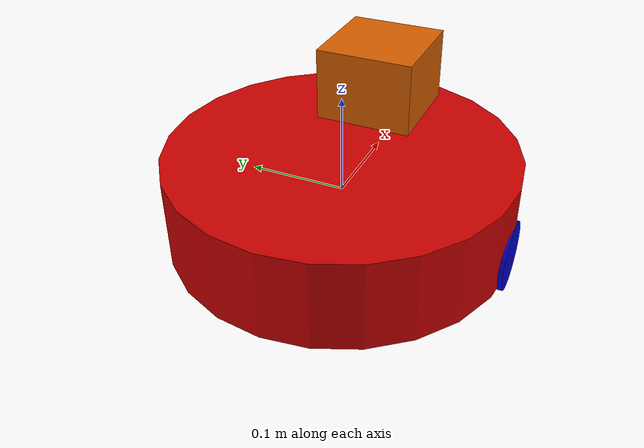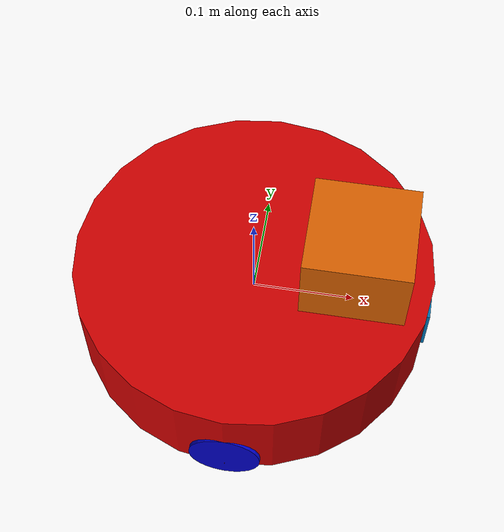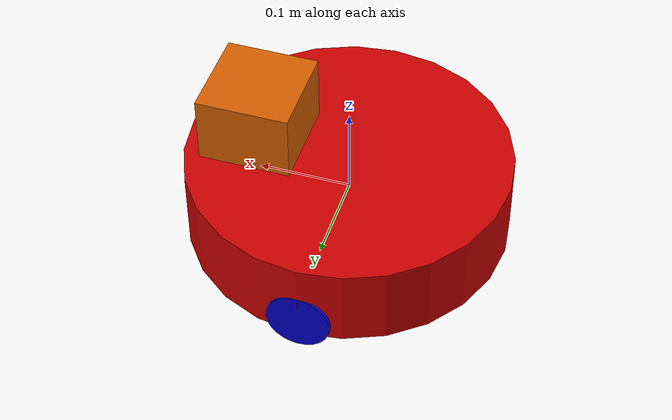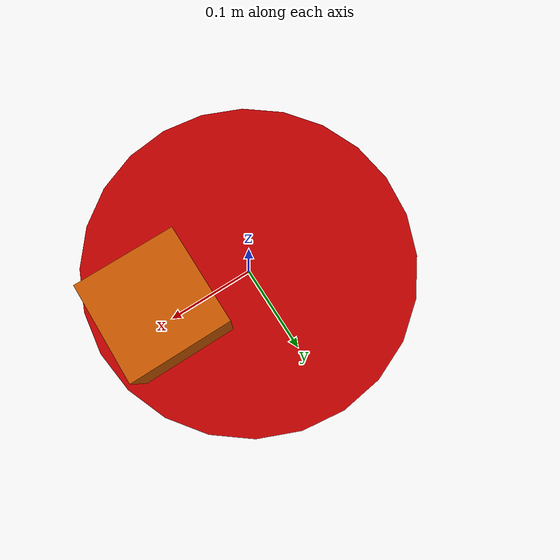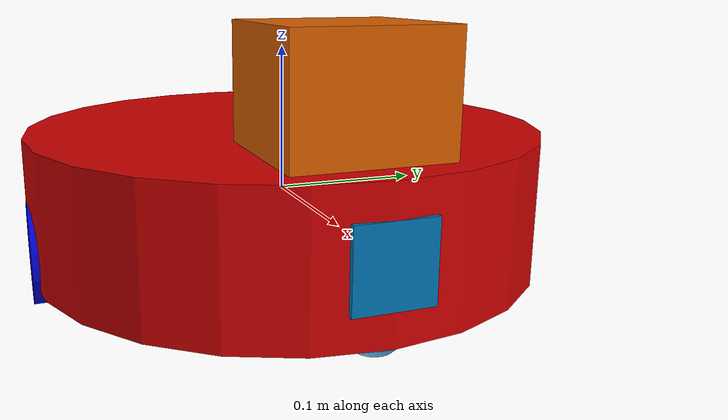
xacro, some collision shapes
<?xml version='1.0'?>

<robot name="my_robot" xmlns:xacro="http://www.ros.org/wiki/xacro">

  <xacro:include filename="$(find my_robot)/urdf/my_robot.gazebo" />

  <material name="blue">
    <color rgba="0 0 0.8 1"/>
  </material>

  <material name="red">
    <color rgba="0.8 0 0 1"/>
  </material>

  <link name="robot_footprint"></link>

  <joint name="robot_footprint_joint" type="fixed">
    <origin xyz="0 0 0" rpy="0 0 0" />
    <parent link="robot_footprint"/>
    <child link="chassis" />
  </joint>

  <joint type="continuous" name="left_wheel_hinge">
    <origin xyz="0 0.15 -0.029" rpy="0 0 0"/>
    <child link="left_wheel"/>
    <parent link="chassis"/>
    <axis xyz="0 1 0" rpy="0 0 0"/>
    <limit effort="10000" velocity="1000"/>
    <dynamics damping="1.0" friction="1.0"/>
  </joint>

  <joint type="continuous" name="right_wheel_hinge">
    <origin xyz="0 -0.15 -0.029" rpy="0 0 0"/>
    <child link="right_wheel"/>
    <parent link="chassis"/>
    <axis xyz="0 1 0" rpy="0 0 0"/>
    <limit effort="10000" velocity="1000"/>
    <dynamics damping="1.0" friction="1.0"/>
  </joint>

  <joint name="camera_joint" type="fixed">
    <origin xyz="0.15 0 0" rpy="0 0 0" />
    <parent link="chassis"/>
    <axis xyz="0 1 0" rpy="0 0 0"/>
    <child link="camera" />
  </joint>

  <joint name="hokuyo_joint" type="fixed">
    <origin xyz="0.10 0 0.071" rpy="0 0 0" />
    <parent link="chassis"/>
    <axis xyz="0 1 0" rpy="0 0 0"/>
    <child link="hokuyo" />
  </joint>

  <link name='chassis'>
    <pose>0 0 0.08 0 0 0</pose>

    <inertial>
      <mass value="3.5"/>
      <origin xyz="0.0 0 0" rpy=" 0 0 0"/>
      <inertia
          ixx="0.05" ixy="0" ixz="0"
          iyy="0.05" iyz="0"
          izz="0.05"
      />
    </inertial>

    <collision name='chassis_collision'>
      <origin xyz="0 0 0" rpy=" 0 0 0"/>
      <geometry>
        <cylinder radius="0.175" length="0.092"/>
      </geometry>
    </collision>

    <visual name='chassis_visual'>
      <origin xyz="0 0 0" rpy=" 0 0 0"/>
      <geometry>
        <cylinder radius="0.175" length="0.092"/>
      </geometry>
      <material name="red"/>
    </visual>

    <collision name='back_caster_1_collision'>
      <origin xyz="-0.13 -0.05 -0.046" rpy=" 0 0 0"/>
      <geometry>
        <sphere radius="0.0169"/>
      </geometry>
    </collision>

    <visual name='back_caster_1_visual'>
      <origin xyz="-0.13 -0.05 -0.04" rpy=" 0 0 0"/>
      <geometry>
        <sphere radius="0.02"/>
      </geometry>
    </visual>

    <collision name='back_caster_2_collision'>
      <origin xyz="-0.13 0.05 -0.046" rpy=" 0 0 0"/>
      <geometry>
        <sphere radius="0.0169"/>
      </geometry>
    </collision>

    <visual name='back_caster_2_visual'>
      <origin xyz="-0.13 0.05 -0.04" rpy=" 0 0 0"/>
      <geometry>
        <sphere radius="0.02"/>
      </geometry>
    </visual>

    <collision name='front_caster_collision'>
      <origin xyz="0.15 0 -0.046" rpy=" 0 0 0"/>
      <geometry>
        <sphere radius="0.0169"/>
      </geometry>
    </collision>

    <visual name='front_caster_visual'>
      <origin xyz="0.15 0 -0.04" rpy=" 0 0 0"/>
      <geometry>
        <sphere radius="0.02"/>
      </geometry>
    </visual>

  </link>

  <link name='left_wheel'>
    <pose>0 0 0 0 1.57070 1.5707</pose>

    <inertial>
      <mass value="0.25"/>
      <origin xyz="0.0 0 0" rpy=" 0 0 0"/>
        <inertia
          ixx="0.01" ixy="0" ixz="0"
          iyy="0.01" iyz="0"
          izz="0.01"
        />
    </inertial>

    <collision name='left_wheel_collision'>
      <origin xyz="0 0 0" rpy=" 0 1.57 1.57"/>
      <geometry>
        <cylinder radius="0.034" length="0.05"/>
      </geometry>
    </collision>

    <visual name='left_wheel_visual'>
      <origin xyz="0 0 0" rpy=" 0 1.57 1.57"/>
      <geometry>
        <cylinder radius="0.034" length="0.05"/>
      </geometry>
      <material name="blue"/>
    </visual>

  </link>

  <link name='right_wheel'>
    <pose>0 0 0 0 1.5707 1.5707</pose>

    <inertial>
      <mass value="0.25"/>
      <origin xyz="0.0 0 0" rpy=" 0 0 0"/>
        <inertia
          ixx="0.01" ixy="0" ixz="0"
          iyy="0.01" iyz="0"
          izz="0.01"
      />
    </inertial>

    <collision name='right_wheel_collision'>
      <origin xyz="0 0 0" rpy=" 0 1.57 1.57"/>
      <geometry>
        <cylinder radius="0.034" length="0.05"/>
      </geometry>
    </collision>

    <visual name='right_wheel_visual'>
      <origin xyz="0 0 0" rpy=" 0 1.57 1.57"/>
      <geometry>
        <cylinder radius="0.034" length="0.05"/>
      </geometry>
      <material name="blue"/>
    </visual>

  </link>

  <link name="camera">
    <inertial>
      <mass value="0.1"/>
      <origin xyz="0 0 0" rpy="0 0 0"/>
			<inertia ixx="0.000001" ixy="0" ixz="0"
							 iyy="0.000001" iyz="0"
							 izz="0.000001"
			/>
    </inertial>

		<collision name='collision_camera'>
      <origin xyz="0 0 0" rpy=" 0 0 0"/>
      <geometry>
        <box size=".05 .05 .05"/>
      </geometry>
    </collision>

    <visual name='visual_camera'>
      <origin xyz="0 0 0" rpy=" 0 0 0"/>
      <geometry>
        <box size=".05 .05 .05"/>
      </geometry>
    </visual>

  </link>

  <link name="hokuyo">
    <inertial>
      <mass value="0.00001"/>
      <origin xyz="0 0 0" rpy="0 0 0"/>
			<inertia ixx="0.000001" ixy="0" ixz="0"
							 iyy="0.000001" iyz="0"
							 izz="0.000001"
			/>
    </inertial>

		<collision name='collision_hokuyo'>
      <origin xyz="0 0 0" rpy=" 0 0 0"/>
      <geometry>
        <box size=".1 .1 .1"/>
      </geometry>
    </collision>

    <visual name='visual_hokuyo'>
      <origin xyz="0 0 0" rpy=" 0 0 0"/>
      <geometry>
        <mesh filename="package://my_robot/meshes/hokuyo.dae"/>
      </geometry>
    </visual>

  </link>

</robot>
